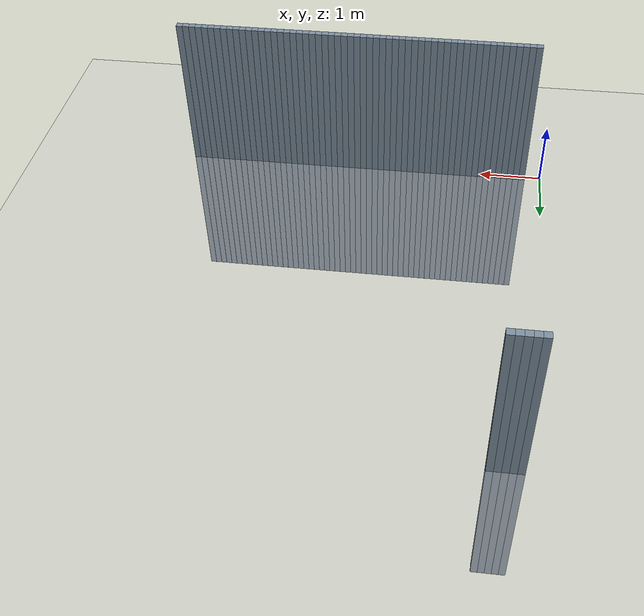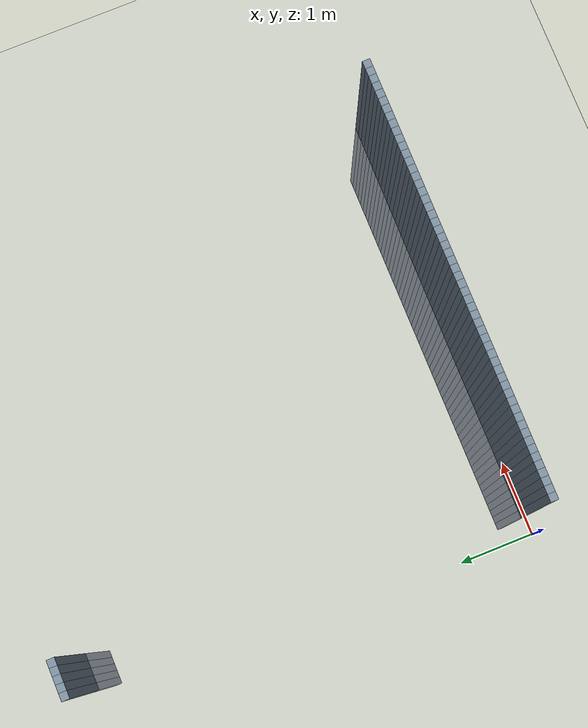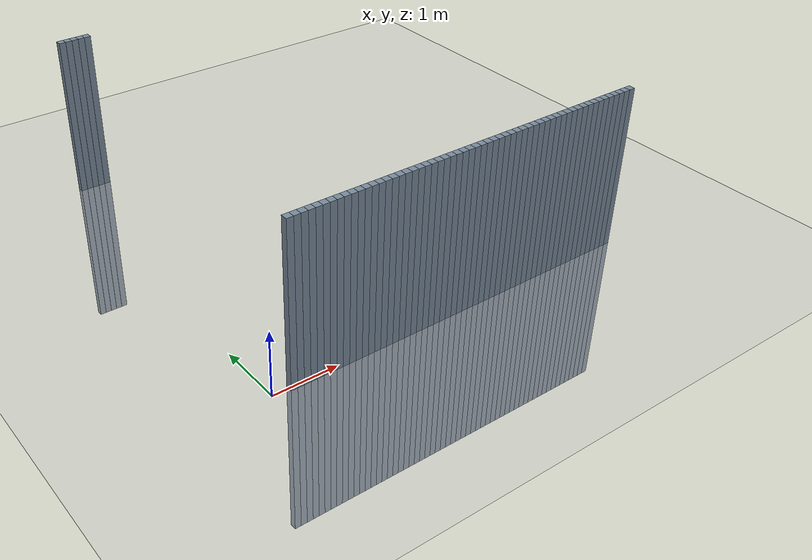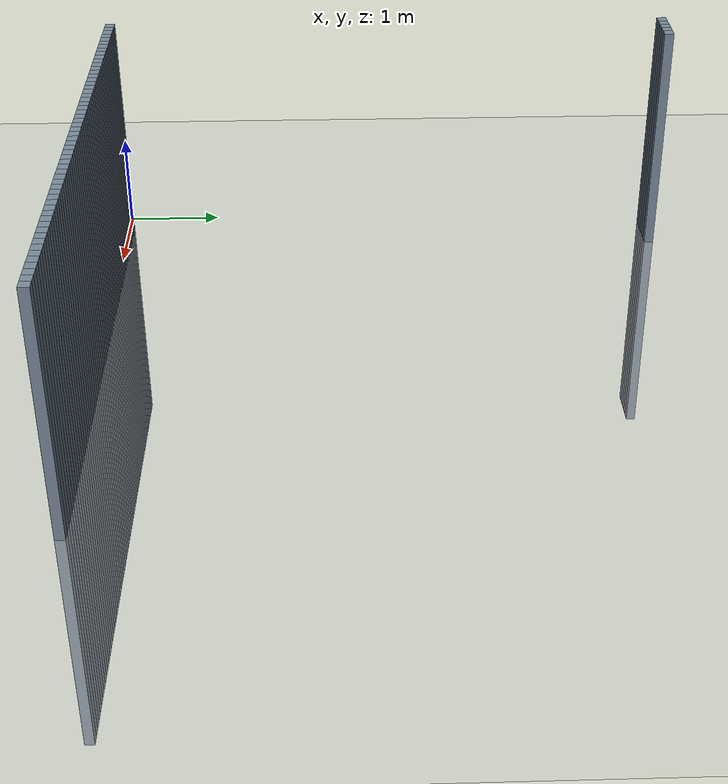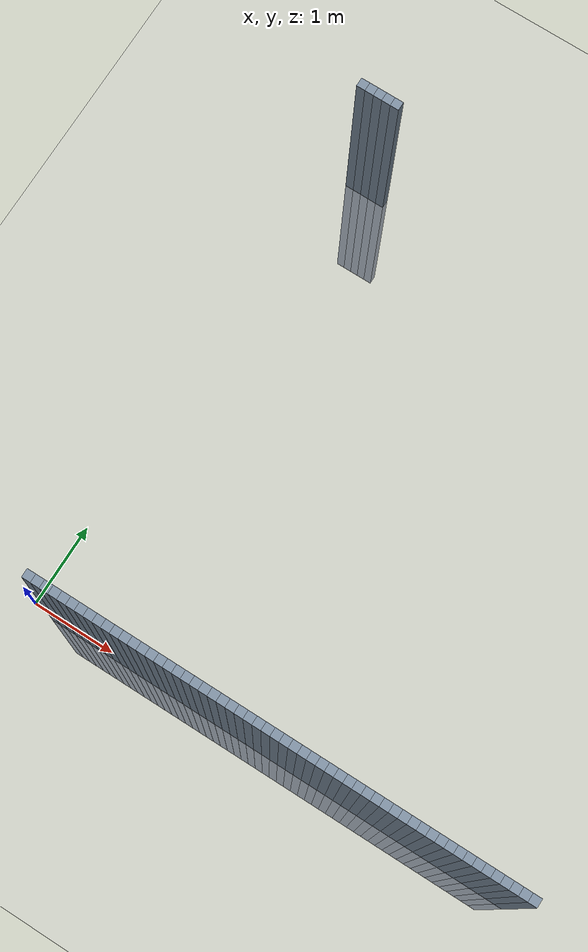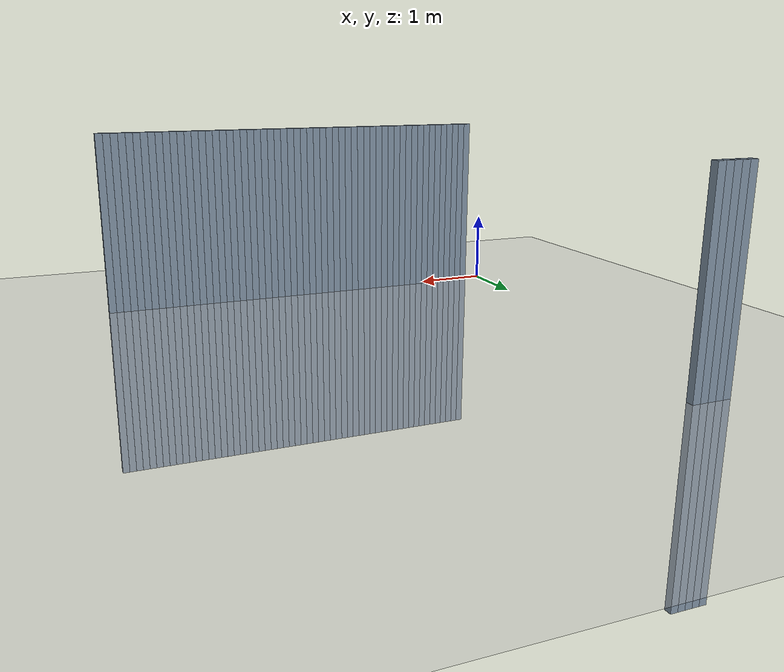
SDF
<sdf version="1.6">
 <world name="default">
  <model name="ground_plane">
   <static>1</static>
   <link name="link">
    <collision name="collision">
     <geometry><plane><normal>0 0 1</normal><size>100 100</size></plane></geometry>
     <surface><friction><ode><mu>100</mu><mu2>50</mu2></ode></friction></surface>
    </collision>
    <visual name="visual">
     <cast_shadows>0</cast_shadows>
     <geometry><plane><normal>0 0 1</normal><size>100 100</size></plane></geometry>
     <material>
      <script><uri>file://media/materials/scripts/gazebo.material</uri><name>Gazebo/Grey</name></script>
     </material>
    </visual>
   </link>
  </model>
  <model name="unit_cylinder_65">
   <static>1</static>
   <pose>0.3 0 0 0 -0 0</pose>
   <link name="link">
    <inertial>
     <mass>1</mass>
     <inertia><ixx>0.145833</ixx><ixy>0</ixy><ixz>0</ixz><iyy>0.145833</iyy><iyz>0</iyz><izz>0.125</izz></inertia>
    </inertial>
    <collision name="collision"><geometry><box><size>0.1 0.1 5</size></box></geometry></collision>
    <visual name="visual">
     <geometry><box><size>0.1 0.1 5</size></box></geometry>
     <material><ambient>0.466667 0.533333 0.6 1</ambient><diffuse>0.466667 0.533333 0.6 1</diffuse></material>
     <material>
      <script><name>Gazebo/Grey</name><uri>file://media/materials/scripts/gazebo.material</uri></script>
     </material>
    </visual>
   </link>
  </model>
  <model name="unit_cylinder_66">
   <static>1</static>
   <pose>0.3 6 0 0 -0 0</pose>
   <link name="link">
    <inertial>
     <mass>1</mass>
     <inertia><ixx>0.145833</ixx><ixy>0</ixy><ixz>0</ixz><iyy>0.145833</iyy><iyz>0</iyz><izz>0.125</izz></inertia>
    </inertial>
    <collision name="collision"><geometry><box><size>0.1 0.1 5</size></box></geometry></collision>
    <visual name="visual">
     <geometry><box><size>0.1 0.1 5</size></box></geometry>
     <material><ambient>0.466667 0.533333 0.6 1</ambient><diffuse>0.466667 0.533333 0.6 1</diffuse></material>
     <material>
      <script><name>Gazebo/Grey</name><uri>file://media/materials/scripts/gazebo.material</uri></script>
     </material>
    </visual>
   </link>
  </model>
  <model name="unit_cylinder_67">
   <static>1</static>
   <pose>0.4 0 0 0 -0 0</pose>
   <link name="link">
    <inertial>
     <mass>1</mass>
     <inertia><ixx>0.145833</ixx><ixy>0</ixy><ixz>0</ixz><iyy>0.145833</iyy><iyz>0</iyz><izz>0.125</izz></inertia>
    </inertial>
    <collision name="collision"><geometry><box><size>0.1 0.1 5</size></box></geometry></collision>
    <visual name="visual">
     <geometry><box><size>0.1 0.1 5</size></box></geometry>
     <material><ambient>0.466667 0.533333 0.6 1</ambient><diffuse>0.466667 0.533333 0.6 1</diffuse></material>
     <material>
      <script><name>Gazebo/Grey</name><uri>file://media/materials/scripts/gazebo.material</uri></script>
     </material>
    </visual>
   </link>
  </model>
  <model name="unit_cylinder_68">
   <static>1</static>
   <pose>0.4 6 0 0 -0 0</pose>
   <link name="link">
    <inertial>
     <mass>1</mass>
     <inertia><ixx>0.145833</ixx><ixy>0</ixy><ixz>0</ixz><iyy>0.145833</iyy><iyz>0</iyz><izz>0.125</izz></inertia>
    </inertial>
    <collision name="collision"><geometry><box><size>0.1 0.1 5</size></box></geometry></collision>
    <visual name="visual">
     <geometry><box><size>0.1 0.1 5</size></box></geometry>
     <material><ambient>0.466667 0.533333 0.6 1</ambient><diffuse>0.466667 0.533333 0.6 1</diffuse></material>
     <material>
      <script><name>Gazebo/Grey</name><uri>file://media/materials/scripts/gazebo.material</uri></script>
     </material>
    </visual>
   </link>
  </model>
  <model name="unit_cylinder_69">
   <static>1</static>
   <pose>0.5 0 0 0 -0 0</pose>
   <link name="link">
    <inertial>
     <mass>1</mass>
     <inertia><ixx>0.145833</ixx><ixy>0</ixy><ixz>0</ixz><iyy>0.145833</iyy><iyz>0</iyz><izz>0.125</izz></inertia>
    </inertial>
    <collision name="collision"><geometry><box><size>0.1 0.1 5</size></box></geometry></collision>
    <visual name="visual">
     <geometry><box><size>0.1 0.1 5</size></box></geometry>
     <material><ambient>0.466667 0.533333 0.6 1</ambient><diffuse>0.466667 0.533333 0.6 1</diffuse></material>
     <material>
      <script><name>Gazebo/Grey</name><uri>file://media/materials/scripts/gazebo.material</uri></script>
     </material>
    </visual>
   </link>
  </model>
  <model name="unit_cylinder_70">
   <static>1</static>
   <pose>0.5 6 0 0 -0 0</pose>
   <link name="link">
    <inertial>
     <mass>1</mass>
     <inertia><ixx>0.145833</ixx><ixy>0</ixy><ixz>0</ixz><iyy>0.145833</iyy><iyz>0</iyz><izz>0.125</izz></inertia>
    </inertial>
    <collision name="collision"><geometry><box><size>0.1 0.1 5</size></box></geometry></collision>
    <visual name="visual">
     <geometry><box><size>0.1 0.1 5</size></box></geometry>
     <material><ambient>0.466667 0.533333 0.6 1</ambient><diffuse>0.466667 0.533333 0.6 1</diffuse></material>
     <material>
      <script><name>Gazebo/Grey</name><uri>file://media/materials/scripts/gazebo.material</uri></script>
     </material>
    </visual>
   </link>
  </model>
  <model name="unit_cylinder_71">
   <static>1</static>
   <pose>0.6 0 0 0 -0 0</pose>
   <link name="link">
    <inertial>
     <mass>1</mass>
     <inertia><ixx>0.145833</ixx><ixy>0</ixy><ixz>0</ixz><iyy>0.145833</iyy><iyz>0</iyz><izz>0.125</izz></inertia>
    </inertial>
    <collision name="collision"><geometry><box><size>0.1 0.1 5</size></box></geometry></collision>
    <visual name="visual">
     <geometry><box><size>0.1 0.1 5</size></box></geometry>
     <material><ambient>0.466667 0.533333 0.6 1</ambient><diffuse>0.466667 0.533333 0.6 1</diffuse></material>
     <material>
      <script><name>Gazebo/Grey</name><uri>file://media/materials/scripts/gazebo.material</uri></script>
     </material>
    </visual>
   </link>
  </model>
  <model name="unit_cylinder_72">
   <static>1</static>
   <pose>0.6 6 0 0 -0 0</pose>
   <link name="link">
    <inertial>
     <mass>1</mass>
     <inertia><ixx>0.145833</ixx><ixy>0</ixy><ixz>0</ixz><iyy>0.145833</iyy><iyz>0</iyz><izz>0.125</izz></inertia>
    </inertial>
    <collision name="collision"><geometry><box><size>0.1 0.1 5</size></box></geometry></collision>
    <visual name="visual">
     <geometry><box><size>0.1 0.1 5</size></box></geometry>
     <material><ambient>0.466667 0.533333 0.6 1</ambient><diffuse>0.466667 0.533333 0.6 1</diffuse></material>
     <material>
      <script><name>Gazebo/Grey</name><uri>file://media/materials/scripts/gazebo.material</uri></script>
     </material>
    </visual>
   </link>
  </model>
  <model name="unit_cylinder_73">
   <static>1</static>
   <pose>0.7 0 0 0 -0 0</pose>
   <link name="link">
    <inertial>
     <mass>1</mass>
     <inertia><ixx>0.145833</ixx><ixy>0</ixy><ixz>0</ixz><iyy>0.145833</iyy><iyz>0</iyz><izz>0.125</izz></inertia>
    </inertial>
    <collision name="collision"><geometry><box><size>0.1 0.1 5</size></box></geometry></collision>
    <visual name="visual">
     <geometry><box><size>0.1 0.1 5</size></box></geometry>
     <material><ambient>0.466667 0.533333 0.6 1</ambient><diffuse>0.466667 0.533333 0.6 1</diffuse></material>
     <material>
      <script><name>Gazebo/Grey</name><uri>file://media/materials/scripts/gazebo.material</uri></script>
     </material>
    </visual>
   </link>
  </model>
  <model name="unit_cylinder_74">
   <static>1</static>
   <pose>0.7 6 0 0 -0 0</pose>
   <link name="link">
    <inertial>
     <mass>1</mass>
     <inertia><ixx>0.145833</ixx><ixy>0</ixy><ixz>0</ixz><iyy>0.145833</iyy><iyz>0</iyz><izz>0.125</izz></inertia>
    </inertial>
    <collision name="collision"><geometry><box><size>0.1 0.1 5</size></box></geometry></collision>
    <visual name="visual">
     <geometry><box><size>0.1 0.1 5</size></box></geometry>
     <material><ambient>0.466667 0.533333 0.6 1</ambient><diffuse>0.466667 0.533333 0.6 1</diffuse></material>
     <material>
      <script><name>Gazebo/Grey</name><uri>file://media/materials/scripts/gazebo.material</uri></script>
     </material>
    </visual>
   </link>
  </model>
  <model name="unit_cylinder_75">
   <static>1</static>
   <pose>0.8 0 0 0 -0 0</pose>
   <link name="link">
    <inertial>
     <mass>1</mass>
     <inertia><ixx>0.145833</ixx><ixy>0</ixy><ixz>0</ixz><iyy>0.145833</iyy><iyz>0</iyz><izz>0.125</izz></inertia>
    </inertial>
    <collision name="collision"><geometry><box><size>0.1 0.1 5</size></box></geometry></collision>
    <visual name="visual">
     <geometry><box><size>0.1 0.1 5</size></box></geometry>
     <material><ambient>0.466667 0.533333 0.6 1</ambient><diffuse>0.466667 0.533333 0.6 1</diffuse></material>
     <material>
      <script><name>Gazebo/Grey</name><uri>file://media/materials/scripts/gazebo.material</uri></script>
     </material>
    </visual>
   </link>
  </model>
  <model name="unit_cylinder_77">
   <static>1</static>
   <pose>0.9 0 0 0 -0 0</pose>
   <link name="link">
    <inertial>
     <mass>1</mass>
     <inertia><ixx>0.145833</ixx><ixy>0</ixy><ixz>0</ixz><iyy>0.145833</iyy><iyz>0</iyz><izz>0.125</izz></inertia>
    </inertial>
    <collision name="collision"><geometry><box><size>0.1 0.1 5</size></box></geometry></collision>
    <visual name="visual">
     <geometry><box><size>0.1 0.1 5</size></box></geometry>
     <material><ambient>0.466667 0.533333 0.6 1</ambient><diffuse>0.466667 0.533333 0.6 1</diffuse></material>
     <material>
      <script><name>Gazebo/Grey</name><uri>file://media/materials/scripts/gazebo.material</uri></script>
     </material>
    </visual>
   </link>
  </model>
  <model name="unit_cylinder_79">
   <static>1</static>
   <pose>1 0 0 0 -0 0</pose>
   <link name="link">
    <inertial>
     <mass>1</mass>
     <inertia><ixx>0.145833</ixx><ixy>0</ixy><ixz>0</ixz><iyy>0.145833</iyy><iyz>0</iyz><izz>0.125</izz></inertia>
    </inertial>
    <collision name="collision"><geometry><box><size>0.1 0.1 5</size></box></geometry></collision>
    <visual name="visual">
     <geometry><box><size>0.1 0.1 5</size></box></geometry>
     <material><ambient>0.466667 0.533333 0.6 1</ambient><diffuse>0.466667 0.533333 0.6 1</diffuse></material>
     <material>
      <script><name>Gazebo/Grey</name><uri>file://media/materials/scripts/gazebo.material</uri></script>
     </material>
    </visual>
   </link>
  </model>
  <model name="unit_cylinder_81">
   <static>1</static>
   <pose>1.1 0 0 0 -0 0</pose>
   <link name="link">
    <inertial>
     <mass>1</mass>
     <inertia><ixx>0.145833</ixx><ixy>0</ixy><ixz>0</ixz><iyy>0.145833</iyy><iyz>0</iyz><izz>0.125</izz></inertia>
    </inertial>
    <collision name="collision"><geometry><box><size>0.1 0.1 5</size></box></geometry></collision>
    <visual name="visual">
     <geometry><box><size>0.1 0.1 5</size></box></geometry>
     <material><ambient>0.466667 0.533333 0.6 1</ambient><diffuse>0.466667 0.533333 0.6 1</diffuse></material>
     <material>
      <script><name>Gazebo/Grey</name><uri>file://media/materials/scripts/gazebo.material</uri></script>
     </material>
    </visual>
   </link>
  </model>
  <model name="unit_cylinder_83">
   <static>1</static>
   <pose>1.2 0 0 0 -0 0</pose>
   <link name="link">
    <inertial>
     <mass>1</mass>
     <inertia><ixx>0.145833</ixx><ixy>0</ixy><ixz>0</ixz><iyy>0.145833</iyy><iyz>0</iyz><izz>0.125</izz></inertia>
    </inertial>
    <collision name="collision"><geometry><box><size>0.1 0.1 5</size></box></geometry></collision>
    <visual name="visual">
     <geometry><box><size>0.1 0.1 5</size></box></geometry>
     <material><ambient>0.466667 0.533333 0.6 1</ambient><diffuse>0.466667 0.533333 0.6 1</diffuse></material>
     <material>
      <script><name>Gazebo/Grey</name><uri>file://media/materials/scripts/gazebo.material</uri></script>
     </material>
    </visual>
   </link>
  </model>
  <model name="unit_cylinder_85">
   <static>1</static>
   <pose>1.3 0 0 0 -0 0</pose>
   <link name="link">
    <inertial>
     <mass>1</mass>
     <inertia><ixx>0.145833</ixx><ixy>0</ixy><ixz>0</ixz><iyy>0.145833</iyy><iyz>0</iyz><izz>0.125</izz></inertia>
    </inertial>
    <collision name="collision"><geometry><box><size>0.1 0.1 5</size></box></geometry></collision>
    <visual name="visual">
     <geometry><box><size>0.1 0.1 5</size></box></geometry>
     <material><ambient>0.466667 0.533333 0.6 1</ambient><diffuse>0.466667 0.533333 0.6 1</diffuse></material>
     <material>
      <script><name>Gazebo/Grey</name><uri>file://media/materials/scripts/gazebo.material</uri></script>
     </material>
    </visual>
   </link>
  </model>
  <model name="unit_cylinder_87">
   <static>1</static>
   <pose>1.4 0 0 0 -0 0</pose>
   <link name="link">
    <inertial>
     <mass>1</mass>
     <inertia><ixx>0.145833</ixx><ixy>0</ixy><ixz>0</ixz><iyy>0.145833</iyy><iyz>0</iyz><izz>0.125</izz></inertia>
    </inertial>
    <collision name="collision"><geometry><box><size>0.1 0.1 5</size></box></geometry></collision>
    <visual name="visual">
     <geometry><box><size>0.1 0.1 5</size></box></geometry>
     <material><ambient>0.466667 0.533333 0.6 1</ambient><diffuse>0.466667 0.533333 0.6 1</diffuse></material>
     <material>
      <script><name>Gazebo/Grey</name><uri>file://media/materials/scripts/gazebo.material</uri></script>
     </material>
    </visual>
   </link>
  </model>
  <model name="unit_cylinder_89">
   <static>1</static>
   <pose>1.5 0 0 0 -0 0</pose>
   <link name="link">
    <inertial>
     <mass>1</mass>
     <inertia><ixx>0.145833</ixx><ixy>0</ixy><ixz>0</ixz><iyy>0.145833</iyy><iyz>0</iyz><izz>0.125</izz></inertia>
    </inertial>
    <collision name="collision"><geometry><box><size>0.1 0.1 5</size></box></geometry></collision>
    <visual name="visual">
     <geometry><box><size>0.1 0.1 5</size></box></geometry>
     <material><ambient>0.466667 0.533333 0.6 1</ambient><diffuse>0.466667 0.533333 0.6 1</diffuse></material>
     <material>
      <script><name>Gazebo/Grey</name><uri>file://media/materials/scripts/gazebo.material</uri></script>
     </material>
    </visual>
   </link>
  </model>
  <model name="unit_cylinder_91">
   <static>1</static>
   <pose>1.6 0 0 0 -0 0</pose>
   <link name="link">
    <inertial>
     <mass>1</mass>
     <inertia><ixx>0.145833</ixx><ixy>0</ixy><ixz>0</ixz><iyy>0.145833</iyy><iyz>0</iyz><izz>0.125</izz></inertia>
    </inertial>
    <collision name="collision"><geometry><box><size>0.1 0.1 5</size></box></geometry></collision>
    <visual name="visual">
     <geometry><box><size>0.1 0.1 5</size></box></geometry>
     <material><ambient>0.466667 0.533333 0.6 1</ambient><diffuse>0.466667 0.533333 0.6 1</diffuse></material>
     <material>
      <script><name>Gazebo/Grey</name><uri>file://media/materials/scripts/gazebo.material</uri></script>
     </material>
    </visual>
   </link>
  </model>
  <model name="unit_cylinder_93">
   <static>1</static>
   <pose>1.7 0 0 0 -0 0</pose>
   <link name="link">
    <inertial>
     <mass>1</mass>
     <inertia><ixx>0.145833</ixx><ixy>0</ixy><ixz>0</ixz><iyy>0.145833</iyy><iyz>0</iyz><izz>0.125</izz></inertia>
    </inertial>
    <collision name="collision"><geometry><box><size>0.1 0.1 5</size></box></geometry></collision>
    <visual name="visual">
     <geometry><box><size>0.1 0.1 5</size></box></geometry>
     <material><ambient>0.466667 0.533333 0.6 1</ambient><diffuse>0.466667 0.533333 0.6 1</diffuse></material>
     <material>
      <script><name>Gazebo/Grey</name><uri>file://media/materials/scripts/gazebo.material</uri></script>
     </material>
    </visual>
   </link>
  </model>
  <model name="unit_cylinder_95">
   <static>1</static>
   <pose>1.8 0 0 0 -0 0</pose>
   <link name="link">
    <inertial>
     <mass>1</mass>
     <inertia><ixx>0.145833</ixx><ixy>0</ixy><ixz>0</ixz><iyy>0.145833</iyy><iyz>0</iyz><izz>0.125</izz></inertia>
    </inertial>
    <collision name="collision"><geometry><box><size>0.1 0.1 5</size></box></geometry></collision>
    <visual name="visual">
     <geometry><box><size>0.1 0.1 5</size></box></geometry>
     <material><ambient>0.466667 0.533333 0.6 1</ambient><diffuse>0.466667 0.533333 0.6 1</diffuse></material>
     <material>
      <script><name>Gazebo/Grey</name><uri>file://media/materials/scripts/gazebo.material</uri></script>
     </material>
    </visual>
   </link>
  </model>
  <model name="unit_cylinder_97">
   <static>1</static>
   <pose>1.9 0 0 0 -0 0</pose>
   <link name="link">
    <inertial>
     <mass>1</mass>
     <inertia><ixx>0.145833</ixx><ixy>0</ixy><ixz>0</ixz><iyy>0.145833</iyy><iyz>0</iyz><izz>0.125</izz></inertia>
    </inertial>
    <collision name="collision"><geometry><box><size>0.1 0.1 5</size></box></geometry></collision>
    <visual name="visual">
     <geometry><box><size>0.1 0.1 5</size></box></geometry>
     <material><ambient>0.466667 0.533333 0.6 1</ambient><diffuse>0.466667 0.533333 0.6 1</diffuse></material>
     <material>
      <script><name>Gazebo/Grey</name><uri>file://media/materials/scripts/gazebo.material</uri></script>
     </material>
    </visual>
   </link>
  </model>
  <model name="unit_cylinder_99">
   <static>1</static>
   <pose>2 0 0 0 -0 0</pose>
   <link name="link">
    <inertial>
     <mass>1</mass>
     <inertia><ixx>0.145833</ixx><ixy>0</ixy><ixz>0</ixz><iyy>0.145833</iyy><iyz>0</iyz><izz>0.125</izz></inertia>
    </inertial>
    <collision name="collision"><geometry><box><size>0.1 0.1 5</size></box></geometry></collision>
    <visual name="visual">
     <geometry><box><size>0.1 0.1 5</size></box></geometry>
     <material><ambient>0.466667 0.533333 0.6 1</ambient><diffuse>0.466667 0.533333 0.6 1</diffuse></material>
     <material>
      <script><name>Gazebo/Grey</name><uri>file://media/materials/scripts/gazebo.material</uri></script>
     </material>
    </visual>
   </link>
  </model>
  <model name="unit_cylinder_101">
   <static>1</static>
   <pose>2.1 0 0 0 -0 0</pose>
   <link name="link">
    <inertial>
     <mass>1</mass>
     <inertia><ixx>0.145833</ixx><ixy>0</ixy><ixz>0</ixz><iyy>0.145833</iyy><iyz>0</iyz><izz>0.125</izz></inertia>
    </inertial>
    <collision name="collision"><geometry><box><size>0.1 0.1 5</size></box></geometry></collision>
    <visual name="visual">
     <geometry><box><size>0.1 0.1 5</size></box></geometry>
     <material><ambient>0.466667 0.533333 0.6 1</ambient><diffuse>0.466667 0.533333 0.6 1</diffuse></material>
     <material>
      <script><name>Gazebo/Grey</name><uri>file://media/materials/scripts/gazebo.material</uri></script>
     </material>
    </visual>
   </link>
  </model>
  <model name="unit_cylinder_103">
   <static>1</static>
   <pose>2.2 0 0 0 -0 0</pose>
   <link name="link">
    <inertial>
     <mass>1</mass>
     <inertia><ixx>0.145833</ixx><ixy>0</ixy><ixz>0</ixz><iyy>0.145833</iyy><iyz>0</iyz><izz>0.125</izz></inertia>
    </inertial>
    <collision name="collision"><geometry><box><size>0.1 0.1 5</size></box></geometry></collision>
    <visual name="visual">
     <geometry><box><size>0.1 0.1 5</size></box></geometry>
     <material><ambient>0.466667 0.533333 0.6 1</ambient><diffuse>0.466667 0.533333 0.6 1</diffuse></material>
     <material>
      <script><name>Gazebo/Grey</name><uri>file://media/materials/scripts/gazebo.material</uri></script>
     </material>
    </visual>
   </link>
  </model>
  <model name="unit_cylinder_105">
   <static>1</static>
   <pose>2.3 0 0 0 -0 0</pose>
   <link name="link">
    <inertial>
     <mass>1</mass>
     <inertia><ixx>0.145833</ixx><ixy>0</ixy><ixz>0</ixz><iyy>0.145833</iyy><iyz>0</iyz><izz>0.125</izz></inertia>
    </inertial>
    <collision name="collision"><geometry><box><size>0.1 0.1 5</size></box></geometry></collision>
    <visual name="visual">
     <geometry><box><size>0.1 0.1 5</size></box></geometry>
     <material><ambient>0.466667 0.533333 0.6 1</ambient><diffuse>0.466667 0.533333 0.6 1</diffuse></material>
     <material>
      <script><name>Gazebo/Grey</name><uri>file://media/materials/scripts/gazebo.material</uri></script>
     </material>
    </visual>
   </link>
  </model>
  <model name="unit_cylinder_107">
   <static>1</static>
   <pose>2.4 0 0 0 -0 0</pose>
   <link name="link">
    <inertial>
     <mass>1</mass>
     <inertia><ixx>0.145833</ixx><ixy>0</ixy><ixz>0</ixz><iyy>0.145833</iyy><iyz>0</iyz><izz>0.125</izz></inertia>
    </inertial>
    <collision name="collision"><geometry><box><size>0.1 0.1 5</size></box></geometry></collision>
    <visual name="visual">
     <geometry><box><size>0.1 0.1 5</size></box></geometry>
     <material><ambient>0.466667 0.533333 0.6 1</ambient><diffuse>0.466667 0.533333 0.6 1</diffuse></material>
     <material>
      <script><name>Gazebo/Grey</name><uri>file://media/materials/scripts/gazebo.material</uri></script>
     </material>
    </visual>
   </link>
  </model>
  <model name="unit_cylinder_109">
   <static>1</static>
   <pose>2.5 0 0 0 -0 0</pose>
   <link name="link">
    <inertial>
     <mass>1</mass>
     <inertia><ixx>0.145833</ixx><ixy>0</ixy><ixz>0</ixz><iyy>0.145833</iyy><iyz>0</iyz><izz>0.125</izz></inertia>
    </inertial>
    <collision name="collision"><geometry><box><size>0.1 0.1 5</size></box></geometry></collision>
    <visual name="visual">
     <geometry><box><size>0.1 0.1 5</size></box></geometry>
     <material><ambient>0.466667 0.533333 0.6 1</ambient><diffuse>0.466667 0.533333 0.6 1</diffuse></material>
     <material>
      <script><name>Gazebo/Grey</name><uri>file://media/materials/scripts/gazebo.material</uri></script>
     </material>
    </visual>
   </link>
  </model>
  <model name="unit_cylinder_111">
   <static>1</static>
   <pose>2.6 0 0 0 -0 0</pose>
   <link name="link">
    <inertial>
     <mass>1</mass>
     <inertia><ixx>0.145833</ixx><ixy>0</ixy><ixz>0</ixz><iyy>0.145833</iyy><iyz>0</iyz><izz>0.125</izz></inertia>
    </inertial>
    <collision name="collision"><geometry><box><size>0.1 0.1 5</size></box></geometry></collision>
    <visual name="visual">
     <geometry><box><size>0.1 0.1 5</size></box></geometry>
     <material><ambient>0.466667 0.533333 0.6 1</ambient><diffuse>0.466667 0.533333 0.6 1</diffuse></material>
     <material>
      <script><name>Gazebo/Grey</name><uri>file://media/materials/scripts/gazebo.material</uri></script>
     </material>
    </visual>
   </link>
  </model>
  <model name="unit_cylinder_113">
   <static>1</static>
   <pose>2.7 0 0 0 -0 0</pose>
   <link name="link">
    <inertial>
     <mass>1</mass>
     <inertia><ixx>0.145833</ixx><ixy>0</ixy><ixz>0</ixz><iyy>0.145833</iyy><iyz>0</iyz><izz>0.125</izz></inertia>
    </inertial>
    <collision name="collision"><geometry><box><size>0.1 0.1 5</size></box></geometry></collision>
    <visual name="visual">
     <geometry><box><size>0.1 0.1 5</size></box></geometry>
     <material><ambient>0.466667 0.533333 0.6 1</ambient><diffuse>0.466667 0.533333 0.6 1</diffuse></material>
     <material>
      <script><name>Gazebo/Grey</name><uri>file://media/materials/scripts/gazebo.material</uri></script>
     </material>
    </visual>
   </link>
  </model>
  <model name="unit_cylinder_115">
   <static>1</static>
   <pose>2.8 0 0 0 -0 0</pose>
   <link name="link">
    <inertial>
     <mass>1</mass>
     <inertia><ixx>0.145833</ixx><ixy>0</ixy><ixz>0</ixz><iyy>0.145833</iyy><iyz>0</iyz><izz>0.125</izz></inertia>
    </inertial>
    <collision name="collision"><geometry><box><size>0.1 0.1 5</size></box></geometry></collision>
    <visual name="visual">
     <geometry><box><size>0.1 0.1 5</size></box></geometry>
     <material><ambient>0.466667 0.533333 0.6 1</ambient><diffuse>0.466667 0.533333 0.6 1</diffuse></material>
     <material>
      <script><name>Gazebo/Grey</name><uri>file://media/materials/scripts/gazebo.material</uri></script>
     </material>
    </visual>
   </link>
  </model>
  <model name="unit_cylinder_117">
   <static>1</static>
   <pose>2.9 0 0 0 -0 0</pose>
   <link name="link">
    <inertial>
     <mass>1</mass>
     <inertia><ixx>0.145833</ixx><ixy>0</ixy><ixz>0</ixz><iyy>0.145833</iyy><iyz>0</iyz><izz>0.125</izz></inertia>
    </inertial>
    <collision name="collision"><geometry><box><size>0.1 0.1 5</size></box></geometry></collision>
    <visual name="visual">
     <geometry><box><size>0.1 0.1 5</size></box></geometry>
     <material><ambient>0.466667 0.533333 0.6 1</ambient><diffuse>0.466667 0.533333 0.6 1</diffuse></material>
     <material>
      <script><name>Gazebo/Grey</name><uri>file://media/materials/scripts/gazebo.material</uri></script>
     </material>
    </visual>
   </link>
  </model>
  <model name="unit_cylinder_119">
   <static>1</static>
   <pose>3 0 0 0 -0 0</pose>
   <link name="link">
    <inertial>
     <mass>1</mass>
     <inertia><ixx>0.145833</ixx><ixy>0</ixy><ixz>0</ixz><iyy>0.145833</iyy><iyz>0</iyz><izz>0.125</izz></inertia>
    </inertial>
    <collision name="collision"><geometry><box><size>0.1 0.1 5</size></box></geometry></collision>
    <visual name="visual">
     <geometry><box><size>0.1 0.1 5</size></box></geometry>
     <material><ambient>0.466667 0.533333 0.6 1</ambient><diffuse>0.466667 0.533333 0.6 1</diffuse></material>
     <material>
      <script><name>Gazebo/Grey</name><uri>file://media/materials/scripts/gazebo.material</uri></script>
     </material>
    </visual>
   </link>
  </model>
  <model name="unit_cylinder_121">
   <static>1</static>
   <pose>3.1 0 0 0 -0 0</pose>
   <link name="link">
    <inertial>
     <mass>1</mass>
     <inertia><ixx>0.145833</ixx><ixy>0</ixy><ixz>0</ixz><iyy>0.145833</iyy><iyz>0</iyz><izz>0.125</izz></inertia>
    </inertial>
    <collision name="collision"><geometry><box><size>0.1 0.1 5</size></box></geometry></collision>
    <visual name="visual">
     <geometry><box><size>0.1 0.1 5</size></box></geometry>
     <material><ambient>0.466667 0.533333 0.6 1</ambient><diffuse>0.466667 0.533333 0.6 1</diffuse></material>
     <material>
      <script><name>Gazebo/Grey</name><uri>file://media/materials/scripts/gazebo.material</uri></script>
     </material>
    </visual>
   </link>
  </model>
  <model name="unit_cylinder_123">
   <static>1</static>
   <pose>3.2 0 0 0 -0 0</pose>
   <link name="link">
    <inertial>
     <mass>1</mass>
     <inertia><ixx>0.145833</ixx><ixy>0</ixy><ixz>0</ixz><iyy>0.145833</iyy><iyz>0</iyz><izz>0.125</izz></inertia>
    </inertial>
    <collision name="collision"><geometry><box><size>0.1 0.1 5</size></box></geometry></collision>
    <visual name="visual">
     <geometry><box><size>0.1 0.1 5</size></box></geometry>
     <material><ambient>0.466667 0.533333 0.6 1</ambient><diffuse>0.466667 0.533333 0.6 1</diffuse></material>
     <material>
      <script><name>Gazebo/Grey</name><uri>file://media/materials/scripts/gazebo.material</uri></script>
     </material>
    </visual>
   </link>
  </model>
  <model name="unit_cylinder_125">
   <static>1</static>
   <pose>3.3 0 0 0 -0 0</pose>
   <link name="link">
    <inertial>
     <mass>1</mass>
     <inertia><ixx>0.145833</ixx><ixy>0</ixy><ixz>0</ixz><iyy>0.145833</iyy><iyz>0</iyz><izz>0.125</izz></inertia>
    </inertial>
    <collision name="collision"><geometry><box><size>0.1 0.1 5</size></box></geometry></collision>
    <visual name="visual">
     <geometry><box><size>0.1 0.1 5</size></box></geometry>
     <material><ambient>0.466667 0.533333 0.6 1</ambient><diffuse>0.466667 0.533333 0.6 1</diffuse></material>
     <material>
      <script><name>Gazebo/Grey</name><uri>file://media/materials/scripts/gazebo.material</uri></script>
     </material>
    </visual>
   </link>
  </model>
  <model name="unit_cylinder_127">
   <static>1</static>
   <pose>3.4 0 0 0 -0 0</pose>
   <link name="link">
    <inertial>
     <mass>1</mass>
     <inertia><ixx>0.145833</ixx><ixy>0</ixy><ixz>0</ixz><iyy>0.145833</iyy><iyz>0</iyz><izz>0.125</izz></inertia>
    </inertial>
    <collision name="collision"><geometry><box><size>0.1 0.1 5</size></box></geometry></collision>
    <visual name="visual">
     <geometry><box><size>0.1 0.1 5</size></box></geometry>
     <material><ambient>0.466667 0.533333 0.6 1</ambient><diffuse>0.466667 0.533333 0.6 1</diffuse></material>
     <material>
      <script><name>Gazebo/Grey</name><uri>file://media/materials/scripts/gazebo.material</uri></script>
     </material>
    </visual>
   </link>
  </model>
  <model name="unit_cylinder_129">
   <static>1</static>
   <pose>3.5 0 0 0 -0 0</pose>
   <link name="link">
    <inertial>
     <mass>1</mass>
     <inertia><ixx>0.145833</ixx><ixy>0</ixy><ixz>0</ixz><iyy>0.145833</iyy><iyz>0</iyz><izz>0.125</izz></inertia>
    </inertial>
    <collision name="collision"><geometry><box><size>0.1 0.1 5</size></box></geometry></collision>
    <visual name="visual">
     <geometry><box><size>0.1 0.1 5</size></box></geometry>
     <material><ambient>0.466667 0.533333 0.6 1</ambient><diffuse>0.466667 0.533333 0.6 1</diffuse></material>
     <material>
      <script><name>Gazebo/Grey</name><uri>file://media/materials/scripts/gazebo.material</uri></script>
     </material>
    </visual>
   </link>
  </model>
  <model name="unit_cylinder_131">
   <static>1</static>
   <pose>3.6 0 0 0 -0 0</pose>
   <link name="link">
    <inertial>
     <mass>1</mass>
     <inertia><ixx>0.145833</ixx><ixy>0</ixy><ixz>0</ixz><iyy>0.145833</iyy><iyz>0</iyz><izz>0.125</izz></inertia>
    </inertial>
    <collision name="collision"><geometry><box><size>0.1 0.1 5</size></box></geometry></collision>
    <visual name="visual">
     <geometry><box><size>0.1 0.1 5</size></box></geometry>
     <material><ambient>0.466667 0.533333 0.6 1</ambient><diffuse>0.466667 0.533333 0.6 1</diffuse></material>
     <material>
      <script><name>Gazebo/Grey</name><uri>file://media/materials/scripts/gazebo.material</uri></script>
     </material>
    </visual>
   </link>
  </model>
  <model name="unit_cylinder_133">
   <static>1</static>
   <pose>3.7 0 0 0 -0 0</pose>
   <link name="link">
    <inertial>
     <mass>1</mass>
     <inertia><ixx>0.145833</ixx><ixy>0</ixy><ixz>0</ixz><iyy>0.145833</iyy><iyz>0</iyz><izz>0.125</izz></inertia>
    </inertial>
    <collision name="collision"><geometry><box><size>0.1 0.1 5</size></box></geometry></collision>
    <visual name="visual">
     <geometry><box><size>0.1 0.1 5</size></box></geometry>
     <material><ambient>0.466667 0.533333 0.6 1</ambient><diffuse>0.466667 0.533333 0.6 1</diffuse></material>
     <material>
      <script><name>Gazebo/Grey</name><uri>file://media/materials/scripts/gazebo.material</uri></script>
     </material>
    </visual>
   </link>
  </model>
  <model name="unit_cylinder_135">
   <static>1</static>
   <pose>3.8 0 0 0 -0 0</pose>
   <link name="link">
    <inertial>
     <mass>1</mass>
     <inertia><ixx>0.145833</ixx><ixy>0</ixy><ixz>0</ixz><iyy>0.145833</iyy><iyz>0</iyz><izz>0.125</izz></inertia>
    </inertial>
    <collision name="collision"><geometry><box><size>0.1 0.1 5</size></box></geometry></collision>
    <visual name="visual">
     <geometry><box><size>0.1 0.1 5</size></box></geometry>
     <material><ambient>0.466667 0.533333 0.6 1</ambient><diffuse>0.466667 0.533333 0.6 1</diffuse></material>
     <material>
      <script><name>Gazebo/Grey</name><uri>file://media/materials/scripts/gazebo.material</uri></script>
     </material>
    </visual>
   </link>
  </model>
  <model name="unit_cylinder_137">
   <static>1</static>
   <pose>3.9 0 0 0 -0 0</pose>
   <link name="link">
    <inertial>
     <mass>1</mass>
     <inertia><ixx>0.145833</ixx><ixy>0</ixy><ixz>0</ixz><iyy>0.145833</iyy><iyz>0</iyz><izz>0.125</izz></inertia>
    </inertial>
    <collision name="collision"><geometry><box><size>0.1 0.1 5</size></box></geometry></collision>
    <visual name="visual">
     <geometry><box><size>0.1 0.1 5</size></box></geometry>
     <material><ambient>0.466667 0.533333 0.6 1</ambient><diffuse>0.466667 0.533333 0.6 1</diffuse></material>
     <material>
      <script><name>Gazebo/Grey</name><uri>file://media/materials/scripts/gazebo.material</uri></script>
     </material>
    </visual>
   </link>
  </model>
  <model name="unit_cylinder_139">
   <static>1</static>
   <pose>4 0 0 0 -0 0</pose>
   <link name="link">
    <inertial>
     <mass>1</mass>
     <inertia><ixx>0.145833</ixx><ixy>0</ixy><ixz>0</ixz><iyy>0.145833</iyy><iyz>0</iyz><izz>0.125</izz></inertia>
    </inertial>
    <collision name="collision"><geometry><box><size>0.1 0.1 5</size></box></geometry></collision>
    <visual name="visual">
     <geometry><box><size>0.1 0.1 5</size></box></geometry>
     <material><ambient>0.466667 0.533333 0.6 1</ambient><diffuse>0.466667 0.533333 0.6 1</diffuse></material>
     <material>
      <script><name>Gazebo/Grey</name><uri>file://media/materials/scripts/gazebo.material</uri></script>
     </material>
    </visual>
   </link>
  </model>
  <model name="unit_cylinder_141">
   <static>1</static>
   <pose>4.1 0 0 0 -0 0</pose>
   <link name="link">
    <inertial>
     <mass>1</mass>
     <inertia><ixx>0.145833</ixx><ixy>0</ixy><ixz>0</ixz><iyy>0.145833</iyy><iyz>0</iyz><izz>0.125</izz></inertia>
    </inertial>
    <collision name="collision"><geometry><box><size>0.1 0.1 5</size></box></geometry></collision>
    <visual name="visual">
     <geometry><box><size>0.1 0.1 5</size></box></geometry>
     <material><ambient>0.466667 0.533333 0.6 1</ambient><diffuse>0.466667 0.533333 0.6 1</diffuse></material>
     <material>
      <script><name>Gazebo/Grey</name><uri>file://media/materials/scripts/gazebo.material</uri></script>
     </material>
    </visual>
   </link>
  </model>
  <model name="unit_cylinder_143">
   <static>1</static>
   <pose>4.2 0 0 0 -0 0</pose>
   <link name="link">
    <inertial>
     <mass>1</mass>
     <inertia><ixx>0.145833</ixx><ixy>0</ixy><ixz>0</ixz><iyy>0.145833</iyy><iyz>0</iyz><izz>0.125</izz></inertia>
    </inertial>
    <collision name="collision"><geometry><box><size>0.1 0.1 5</size></box></geometry></collision>
    <visual name="visual">
     <geometry><box><size>0.1 0.1 5</size></box></geometry>
     <material><ambient>0.466667 0.533333 0.6 1</ambient><diffuse>0.466667 0.533333 0.6 1</diffuse></material>
     <material>
      <script><name>Gazebo/Grey</name><uri>file://media/materials/scripts/gazebo.material</uri></script>
     </material>
    </visual>
   </link>
  </model>
  <model name="unit_cylinder_145">
   <static>1</static>
   <pose>4.3 0 0 0 -0 0</pose>
   <link name="link">
    <inertial>
     <mass>1</mass>
     <inertia><ixx>0.145833</ixx><ixy>0</ixy><ixz>0</ixz><iyy>0.145833</iyy><iyz>0</iyz><izz>0.125</izz></inertia>
    </inertial>
    <collision name="collision"><geometry><box><size>0.1 0.1 5</size></box></geometry></collision>
    <visual name="visual">
     <geometry><box><size>0.1 0.1 5</size></box></geometry>
     <material><ambient>0.466667 0.533333 0.6 1</ambient><diffuse>0.466667 0.533333 0.6 1</diffuse></material>
     <material>
      <script><name>Gazebo/Grey</name><uri>file://media/materials/scripts/gazebo.material</uri></script>
     </material>
    </visual>
   </link>
  </model>
  <model name="unit_cylinder_147">
   <static>1</static>
   <pose>4.4 0 0 0 -0 0</pose>
   <link name="link">
    <inertial>
     <mass>1</mass>
     <inertia><ixx>0.145833</ixx><ixy>0</ixy><ixz>0</ixz><iyy>0.145833</iyy><iyz>0</iyz><izz>0.125</izz></inertia>
    </inertial>
    <collision name="collision"><geometry><box><size>0.1 0.1 5</size></box></geometry></collision>
    <visual name="visual">
     <geometry><box><size>0.1 0.1 5</size></box></geometry>
     <material><ambient>0.466667 0.533333 0.6 1</ambient><diffuse>0.466667 0.533333 0.6 1</diffuse></material>
     <material>
      <script><name>Gazebo/Grey</name><uri>file://media/materials/scripts/gazebo.material</uri></script>
     </material>
    </visual>
   </link>
  </model>
  <model name="unit_cylinder_149">
   <static>1</static>
   <pose>4.5 0 0 0 -0 0</pose>
   <link name="link">
    <inertial>
     <mass>1</mass>
     <inertia><ixx>0.145833</ixx><ixy>0</ixy><ixz>0</ixz><iyy>0.145833</iyy><iyz>0</iyz><izz>0.125</izz></inertia>
    </inertial>
    <collision name="collision"><geometry><box><size>0.1 0.1 5</size></box></geometry></collision>
    <visual name="visual">
     <geometry><box><size>0.1 0.1 5</size></box></geometry>
     <material><ambient>0.466667 0.533333 0.6 1</ambient><diffuse>0.466667 0.533333 0.6 1</diffuse></material>
     <material>
      <script><name>Gazebo/Grey</name><uri>file://media/materials/scripts/gazebo.material</uri></script>
     </material>
    </visual>
   </link>
  </model>
  <model name="unit_cylinder_151">
   <static>1</static>
   <pose>4.6 0 0 0 -0 0</pose>
   <link name="link">
    <inertial>
     <mass>1</mass>
     <inertia><ixx>0.145833</ixx><ixy>0</ixy><ixz>0</ixz><iyy>0.145833</iyy><iyz>0</iyz><izz>0.125</izz></inertia>
    </inertial>
    <collision name="collision"><geometry><box><size>0.1 0.1 5</size></box></geometry></collision>
    <visual name="visual">
     <geometry><box><size>0.1 0.1 5</size></box></geometry>
     <material><ambient>0.466667 0.533333 0.6 1</ambient><diffuse>0.466667 0.533333 0.6 1</diffuse></material>
     <material>
      <script><name>Gazebo/Grey</name><uri>file://media/materials/scripts/gazebo.material</uri></script>
     </material>
    </visual>
   </link>
  </model>
  <model name="unit_cylinder_153">
   <static>1</static>
   <pose>4.7 0 0 0 -0 0</pose>
   <link name="link">
    <inertial>
     <mass>1</mass>
     <inertia><ixx>0.145833</ixx><ixy>0</ixy><ixz>0</ixz><iyy>0.145833</iyy><iyz>0</iyz><izz>0.125</izz></inertia>
    </inertial>
    <collision name="collision"><geometry><box><size>0.1 0.1 5</size></box></geometry></collision>
    <visual name="visual">
     <geometry><box><size>0.1 0.1 5</size></box></geometry>
     <material><ambient>0.466667 0.533333 0.6 1</ambient><diffuse>0.466667 0.533333 0.6 1</diffuse></material>
     <material>
      <script><name>Gazebo/Grey</name><uri>file://media/materials/scripts/gazebo.material</uri></script>
     </material>
    </visual>
   </link>
  </model>
  <model name="unit_cylinder_155">
   <static>1</static>
   <pose>4.8 0 0 0 -0 0</pose>
   <link name="link">
    <inertial>
     <mass>1</mass>
     <inertia><ixx>0.145833</ixx><ixy>0</ixy><ixz>0</ixz><iyy>0.145833</iyy><iyz>0</iyz><izz>0.125</izz></inertia>
    </inertial>
    <collision name="collision"><geometry><box><size>0.1 0.1 5</size></box></geometry></collision>
    <visual name="visual">
     <geometry><box><size>0.1 0.1 5</size></box></geometry>
     <material><ambient>0.466667 0.533333 0.6 1</ambient><diffuse>0.466667 0.533333 0.6 1</diffuse></material>
     <material>
      <script><name>Gazebo/Grey</name><uri>file://media/materials/scripts/gazebo.material</uri></script>
     </material>
    </visual>
   </link>
  </model>
  <model name="unit_cylinder_157">
   <static>1</static>
   <pose>4.9 0 0 0 -0 0</pose>
   <link name="link">
    <inertial>
     <mass>1</mass>
     <inertia><ixx>0.145833</ixx><ixy>0</ixy><ixz>0</ixz><iyy>0.145833</iyy><iyz>0</iyz><izz>0.125</izz></inertia>
    </inertial>
    <collision name="collision"><geometry><box><size>0.1 0.1 5</size></box></geometry></collision>
    <visual name="visual">
     <geometry><box><size>0.1 0.1 5</size></box></geometry>
     <material><ambient>0.466667 0.533333 0.6 1</ambient><diffuse>0.466667 0.533333 0.6 1</diffuse></material>
     <material>
      <script><name>Gazebo/Grey</name><uri>file://media/materials/scripts/gazebo.material</uri></script>
     </material>
    </visual>
   </link>
  </model>
  <model name="unit_cylinder_159">
   <static>1</static>
   <pose>5 0 0 0 -0 0</pose>
   <link name="link">
    <inertial>
     <mass>1</mass>
     <inertia><ixx>0.145833</ixx><ixy>0</ixy><ixz>0</ixz><iyy>0.145833</iyy><iyz>0</iyz><izz>0.125</izz></inertia>
    </inertial>
    <collision name="collision"><geometry><box><size>0.1 0.1 5</size></box></geometry></collision>
    <visual name="visual">
     <geometry><box><size>0.1 0.1 5</size></box></geometry>
     <material><ambient>0.466667 0.533333 0.6 1</ambient><diffuse>0.466667 0.533333 0.6 1</diffuse></material>
     <material>
      <script><name>Gazebo/Grey</name><uri>file://media/materials/scripts/gazebo.material</uri></script>
     </material>
    </visual>
   </link>
  </model>
  <model name="unit_cylinder_161">
   <static>1</static>
   <pose>5.1 0 0 0 -0 0</pose>
   <link name="link">
    <inertial>
     <mass>1</mass>
     <inertia><ixx>0.145833</ixx><ixy>0</ixy><ixz>0</ixz><iyy>0.145833</iyy><iyz>0</iyz><izz>0.125</izz></inertia>
    </inertial>
    <collision name="collision"><geometry><box><size>0.1 0.1 5</size></box></geometry></collision>
    <visual name="visual">
     <geometry><box><size>0.1 0.1 5</size></box></geometry>
     <material><ambient>0.466667 0.533333 0.6 1</ambient><diffuse>0.466667 0.533333 0.6 1</diffuse></material>
     <material>
      <script><name>Gazebo/Grey</name><uri>file://media/materials/scripts/gazebo.material</uri></script>
     </material>
    </visual>
   </link>
  </model>
  <model name="unit_cylinder_163">
   <static>1</static>
   <pose>5.2 0 0 0 -0 0</pose>
   <link name="link">
    <inertial>
     <mass>1</mass>
     <inertia><ixx>0.145833</ixx><ixy>0</ixy><ixz>0</ixz><iyy>0.145833</iyy><iyz>0</iyz><izz>0.125</izz></inertia>
    </inertial>
    <collision name="collision"><geometry><box><size>0.1 0.1 5</size></box></geometry></collision>
    <visual name="visual">
     <geometry><box><size>0.1 0.1 5</size></box></geometry>
     <material><ambient>0.466667 0.533333 0.6 1</ambient><diffuse>0.466667 0.533333 0.6 1</diffuse></material>
     <material>
      <script><name>Gazebo/Grey</name><uri>file://media/materials/scripts/gazebo.material</uri></script>
     </material>
    </visual>
   </link>
  </model>
  <model name="unit_cylinder_165">
   <static>1</static>
   <pose>5.3 0 0 0 -0 0</pose>
   <link name="link">
    <inertial>
     <mass>1</mass>
     <inertia><ixx>0.145833</ixx><ixy>0</ixy><ixz>0</ixz><iyy>0.145833</iyy><iyz>0</iyz><izz>0.125</izz></inertia>
    </inertial>
    <collision name="collision"><geometry><box><size>0.1 0.1 5</size></box></geometry></collision>
    <visual name="visual">
     <geometry><box><size>0.1 0.1 5</size></box></geometry>
     <material><ambient>0.466667 0.533333 0.6 1</ambient><diffuse>0.466667 0.533333 0.6 1</diffuse></material>
     <material>
      <script><name>Gazebo/Grey</name><uri>file://media/materials/scripts/gazebo.material</uri></script>
     </material>
    </visual>
   </link>
  </model>
  <model name="unit_cylinder_167">
   <static>1</static>
   <pose>5.4 0 0 0 -0 0</pose>
   <link name="link">
    <inertial>
     <mass>1</mass>
     <inertia><ixx>0.145833</ixx><ixy>0</ixy><ixz>0</ixz><iyy>0.145833</iyy><iyz>0</iyz><izz>0.125</izz></inertia>
    </inertial>
    <collision name="collision"><geometry><box><size>0.1 0.1 5</size></box></geometry></collision>
    <visual name="visual">
     <geometry><box><size>0.1 0.1 5</size></box></geometry>
     <material><ambient>0.466667 0.533333 0.6 1</ambient><diffuse>0.466667 0.533333 0.6 1</diffuse></material>
     <material>
      <script><name>Gazebo/Grey</name><uri>file://media/materials/scripts/gazebo.material</uri></script>
     </material>
    </visual>
   </link>
  </model>
  <model name="unit_cylinder_169">
   <static>1</static>
   <pose>5.5 0 0 0 -0 0</pose>
   <link name="link">
    <inertial>
     <mass>1</mass>
     <inertia><ixx>0.145833</ixx><ixy>0</ixy><ixz>0</ixz><iyy>0.145833</iyy><iyz>0</iyz><izz>0.125</izz></inertia>
    </inertial>
    <collision name="collision"><geometry><box><size>0.1 0.1 5</size></box></geometry></collision>
    <visual name="visual">
     <geometry><box><size>0.1 0.1 5</size></box></geometry>
     <material><ambient>0.466667 0.533333 0.6 1</ambient><diffuse>0.466667 0.533333 0.6 1</diffuse></material>
     <material>
      <script><name>Gazebo/Grey</name><uri>file://media/materials/scripts/gazebo.material</uri></script>
     </material>
    </visual>
   </link>
  </model>
  <model name="unit_cylinder_171">
   <static>1</static>
   <pose>5.6 0 0 0 -0 0</pose>
   <link name="link">
    <inertial>
     <mass>1</mass>
     <inertia><ixx>0.145833</ixx><ixy>0</ixy><ixz>0</ixz><iyy>0.145833</iyy><iyz>0</iyz><izz>0.125</izz></inertia>
    </inertial>
    <collision name="collision"><geometry><box><size>0.1 0.1 5</size></box></geometry></collision>
    <visual name="visual">
     <geometry><box><size>0.1 0.1 5</size></box></geometry>
     <material><ambient>0.466667 0.533333 0.6 1</ambient><diffuse>0.466667 0.533333 0.6 1</diffuse></material>
     <material>
      <script><name>Gazebo/Grey</name><uri>file://media/materials/scripts/gazebo.material</uri></script>
     </material>
    </visual>
   </link>
  </model>
  <model name="unit_cylinder_173">
   <static>1</static>
   <pose>5.7 0 0 0 -0 0</pose>
   <link name="link">
    <inertial>
     <mass>1</mass>
     <inertia><ixx>0.145833</ixx><ixy>0</ixy><ixz>0</ixz><iyy>0.145833</iyy><iyz>0</iyz><izz>0.125</izz></inertia>
    </inertial>
    <collision name="collision"><geometry><box><size>0.1 0.1 5</size></box></geometry></collision>
    <visual name="visual">
     <geometry><box><size>0.1 0.1 5</size></box></geometry>
     <material><ambient>0.466667 0.533333 0.6 1</ambient><diffuse>0.466667 0.533333 0.6 1</diffuse></material>
     <material>
      <script><name>Gazebo/Grey</name><uri>file://media/materials/scripts/gazebo.material</uri></script>
     </material>
    </visual>
   </link>
  </model>
  <model name="unit_cylinder_175">
   <static>1</static>
   <pose>5.8 0 0 0 -0 0</pose>
   <link name="link">
    <inertial>
     <mass>1</mass>
     <inertia><ixx>0.145833</ixx><ixy>0</ixy><ixz>0</ixz><iyy>0.145833</iyy><iyz>0</iyz><izz>0.125</izz></inertia>
    </inertial>
    <collision name="collision"><geometry><box><size>0.1 0.1 5</size></box></geometry></collision>
    <visual name="visual">
     <geometry><box><size>0.1 0.1 5</size></box></geometry>
     <material><ambient>0.466667 0.533333 0.6 1</ambient><diffuse>0.466667 0.533333 0.6 1</diffuse></material>
     <material>
      <script><name>Gazebo/Grey</name><uri>file://media/materials/scripts/gazebo.material</uri></script>
     </material>
    </visual>
   </link>
  </model>
  <model name="unit_cylinder_177">
   <static>1</static>
   <pose>5.9 0 0 0 -0 0</pose>
   <link name="link">
    <inertial>
     <mass>1</mass>
     <inertia><ixx>0.145833</ixx><ixy>0</ixy><ixz>0</ixz><iyy>0.145833</iyy><iyz>0</iyz><izz>0.125</izz></inertia>
    </inertial>
    <collision name="collision"><geometry><box><size>0.1 0.1 5</size></box></geometry></collision>
    <visual name="visual">
     <geometry><box><size>0.1 0.1 5</size></box></geometry>
     <material><ambient>0.466667 0.533333 0.6 1</ambient><diffuse>0.466667 0.533333 0.6 1</diffuse></material>
     <material>
      <script><name>Gazebo/Grey</name><uri>file://media/materials/scripts/gazebo.material</uri></script>
     </material>
    </visual>
   </link>
  </model>
 </world>
</sdf>
